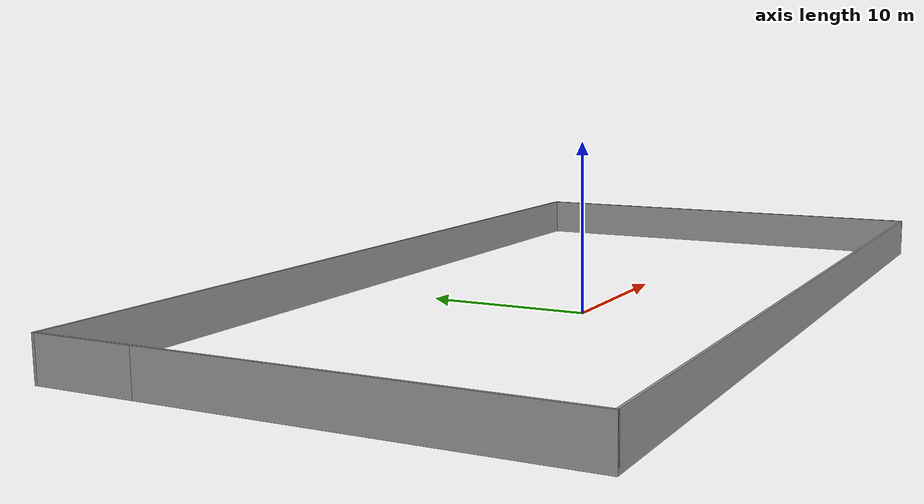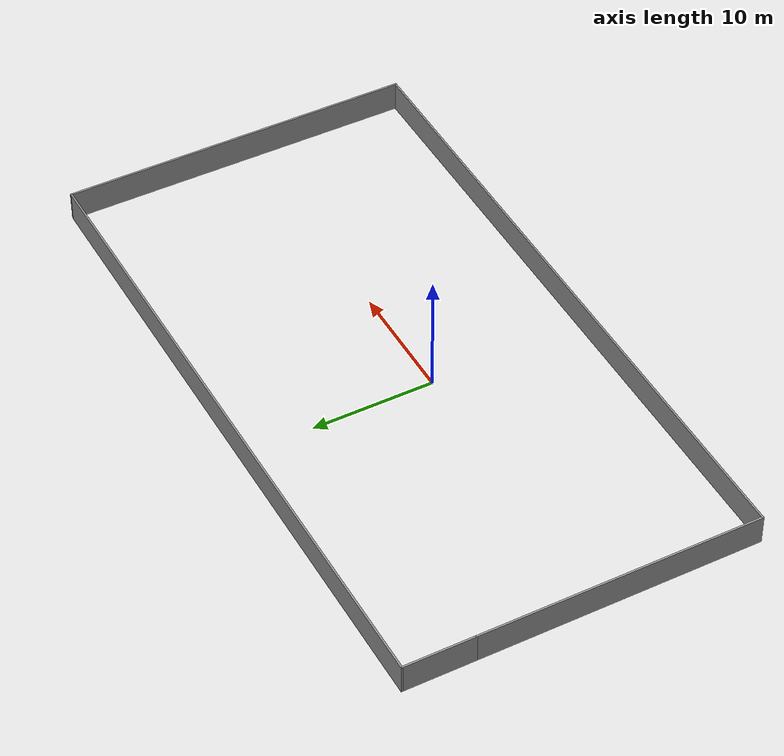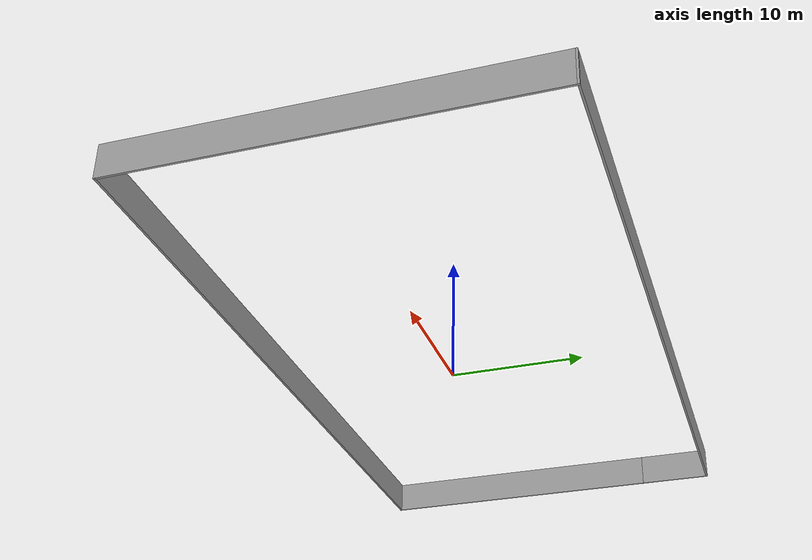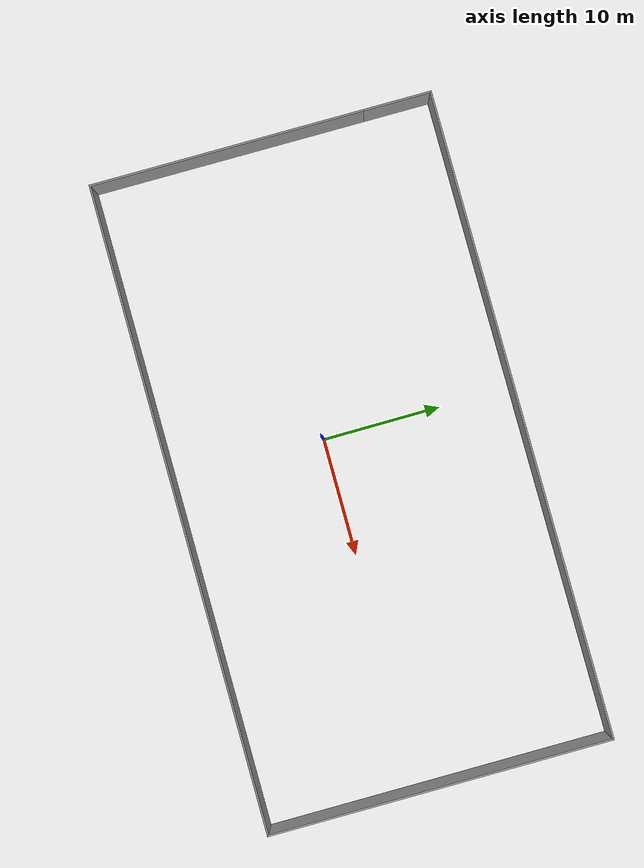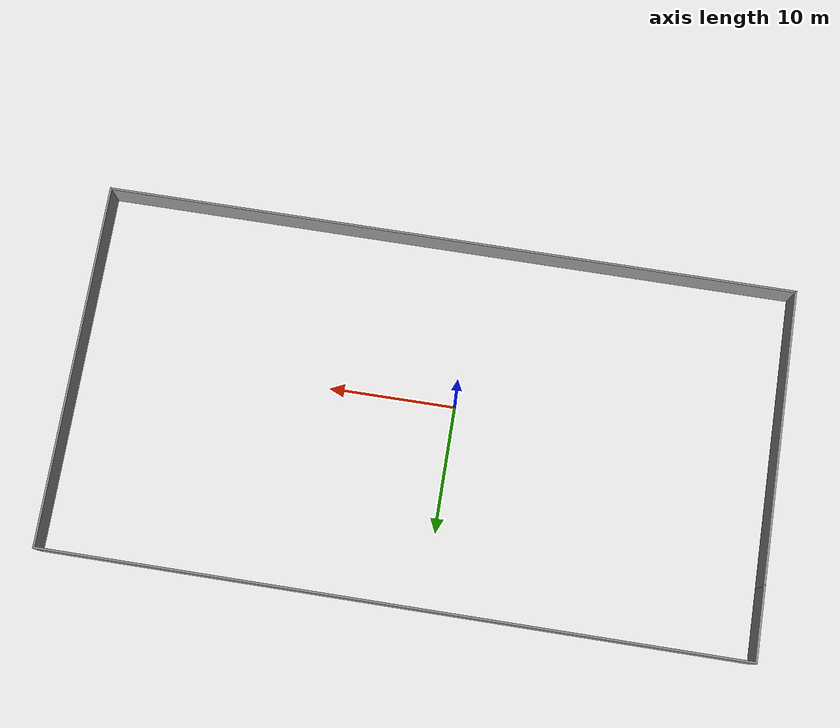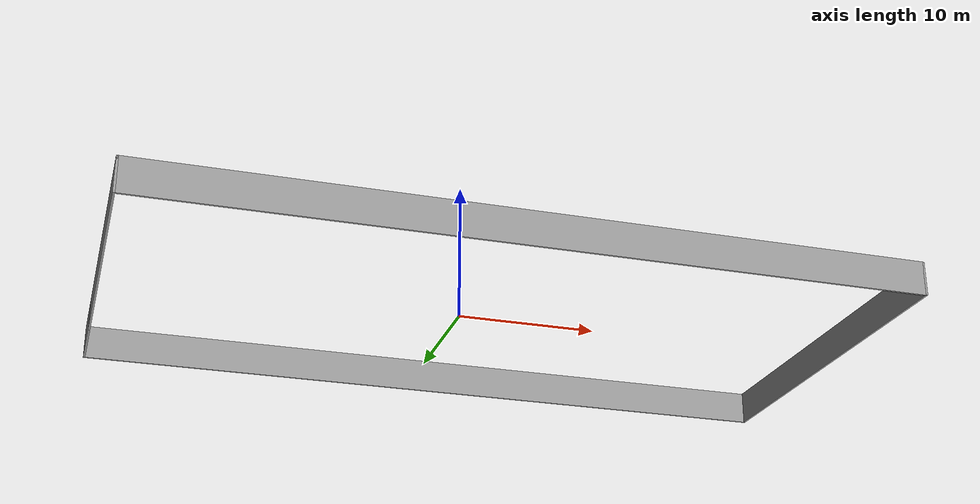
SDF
<?xml version='1.0'?>
<sdf version='1.6'>
  <model name='new'>
    <pose frame=''>2.34904 1.60737 0 0 -0 0</pose>
    <link name='Wall_1'>
      <collision name='Wall_1_Collision'>
        <geometry>
          <box>
            <size>23.25 0.15 2.5</size>
          </box>
        </geometry>
        <pose frame=''>0 0 1.25 0 -0 0</pose>
      </collision>
      <visual name='Wall_1_Visual'>
        <pose frame=''>0 0 1.25 0 -0 0</pose>
        <geometry>
          <box>
            <size>23.25 0.15 2.5</size>
          </box>
        </geometry>
        <material>
          <script>
            <uri>file://media/materials/scripts/gazebo.material</uri>
            <name>Gazebo/Grey</name>
          </script>
          <ambient>1 1 1 1</ambient>
        </material>
      </visual>
      <pose frame=''>-27.3 -2.875 0 0 0 -1.5708</pose>
    </link>
    <link name='Wall_2'>
      <collision name='Wall_2_Collision'>
        <geometry>
          <box>
            <size>54.75 0.15 2.5</size>
          </box>
        </geometry>
        <pose frame=''>0 0 1.25 0 -0 0</pose>
      </collision>
      <visual name='Wall_2_Visual'>
        <pose frame=''>0 0 1.25 0 -0 0</pose>
        <geometry>
          <box>
            <size>54.75 0.15 2.5</size>
          </box>
        </geometry>
        <material>
          <script>
            <uri>file://media/materials/scripts/gazebo.material</uri>
            <name>Gazebo/Grey</name>
          </script>
          <ambient>1 1 1 1</ambient>
        </material>
      </visual>
      <pose frame=''>-1e-06 -14.425 0 0 -0 0</pose>
    </link>
    <link name='Wall_3'>
      <collision name='Wall_3_Collision'>
        <geometry>
          <box>
            <size>29 0.15 2.5</size>
          </box>
        </geometry>
        <pose frame=''>0 0 1.25 0 -0 0</pose>
      </collision>
      <visual name='Wall_3_Visual'>
        <pose frame=''>0 0 1.25 0 -0 0</pose>
        <geometry>
          <box>
            <size>29 0.15 2.5</size>
          </box>
        </geometry>
        <material>
          <script>
            <uri>file://media/materials/scripts/gazebo.material</uri>
            <name>Gazebo/Grey</name>
          </script>
          <ambient>1 1 1 1</ambient>
        </material>
      </visual>
      <pose frame=''>27.3 0 0 0 -0 1.5708</pose>
    </link>
    <link name='Wall_4'>
      <collision name='Wall_4_Collision'>
        <geometry>
          <box>
            <size>54.75 0.15 2.5</size>
          </box>
        </geometry>
        <pose frame=''>0 0 1.25 0 -0 0</pose>
      </collision>
      <visual name='Wall_4_Visual'>
        <pose frame=''>0 0 1.25 0 -0 0</pose>
        <geometry>
          <box>
            <size>54.75 0.15 2.5</size>
          </box>
        </geometry>
        <material>
          <script>
            <uri>file://media/materials/scripts/gazebo.material</uri>
            <name>Gazebo/Grey</name>
          </script>
          <ambient>1 1 1 1</ambient>
        </material>
      </visual>
      <pose frame=''>-1e-06 14.425 0 0 -0 3.14159</pose>
    </link>
    <link name='Wall_5'>
      <collision name='Wall_5_Collision'>
        <geometry>
          <box>
            <size>5.9 0.15 2.5</size>
          </box>
        </geometry>
        <pose frame=''>0 0 1.25 0 -0 0</pose>
      </collision>
      <visual name='Wall_5_Visual'>
        <pose frame=''>0 0 1.25 0 -0 0</pose>
        <geometry>
          <box>
            <size>5.9 0.15 2.5</size>
          </box>
        </geometry>
        <material>
          <script>
            <uri>file://media/materials/scripts/gazebo.material</uri>
            <name>Gazebo/Grey</name>
          </script>
          <ambient>1 1 1 1</ambient>
        </material>
      </visual>
      <pose frame=''>-27.3 11.55 0 0 0 -1.5708</pose>
    </link>
    <static>1</static>
  </model>
</sdf>
